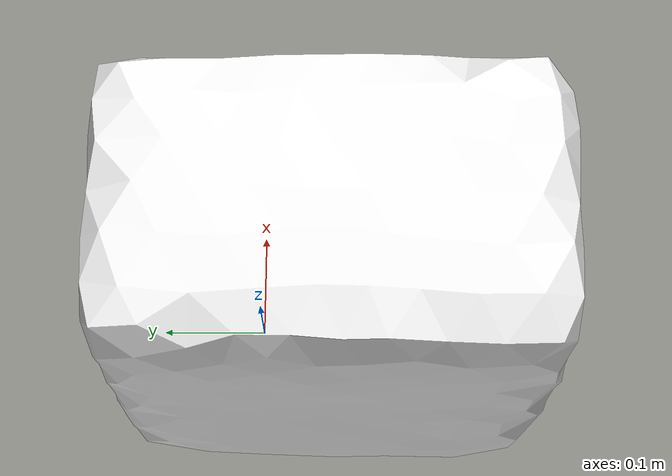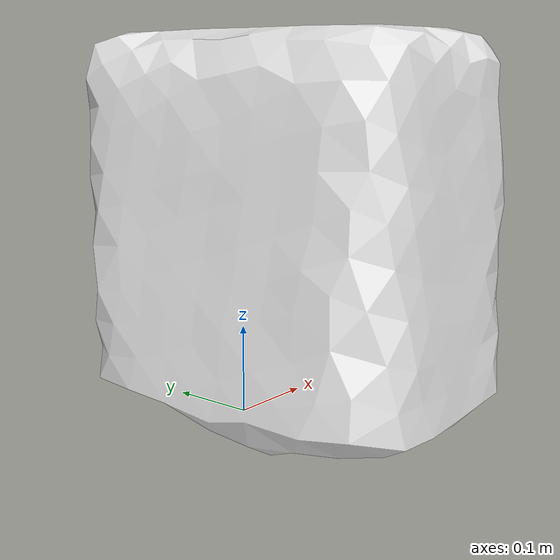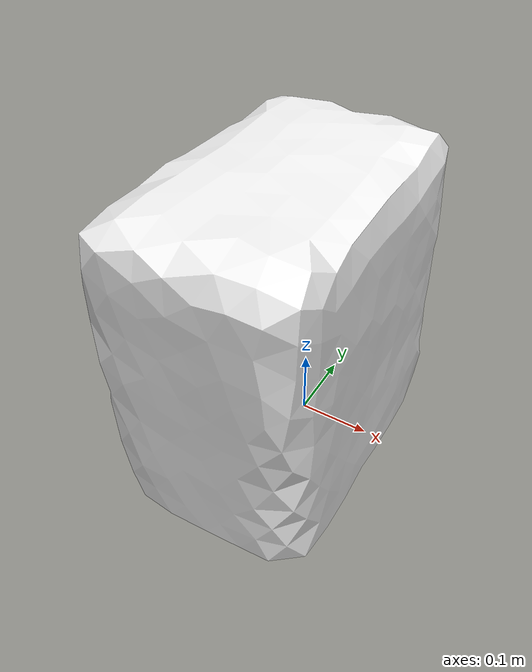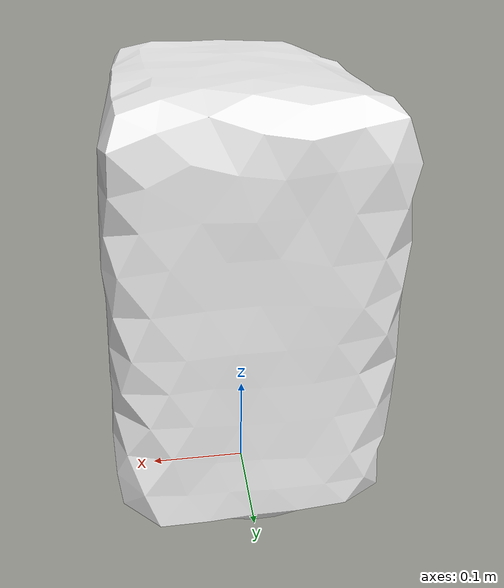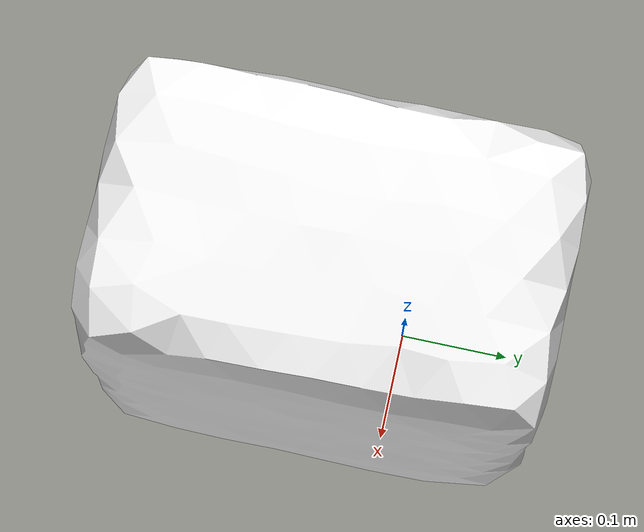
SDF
<?xml version="1.0" ?><sdf version="1.5"><model name="tchibo-box">
<link name="link">
<pose>0 0 0 0 0 0</pose>
<inertial>
<pose>0.0011 -0.069138 0.218289 0 0 0</pose>
<mass>0.59</mass>
<inertia>
<ixx>0.0171154</ixx>
<ixy>0</ixy><iyy>0.012674</iyy>
<ixz>0</ixz><iyz>0</iyz><izz>0.0116607</izz>
</inertia>
</inertial>
<visual name="visual">
<pose>0 0 0 0 0 0</pose>
<geometry><mesh><uri>model://tchibo-box/meshes/tchibo-box.dae</uri></mesh></geometry>
<material><script><uri>file://media/materials/scripts/gazebo.material</uri><name>Gazebo/WhiteGlow</name></script></material></visual>
<collision name="collision"><pose>0 0 0 0 0 0</pose><geometry><mesh><uri>model://tchibo-box/meshes/tchibo-box.dae</uri></mesh></geometry>
<surface><friction><ode><mu>1.000000</mu><mu2>1.000000</mu2></ode></friction></surface>
</collision></link></model></sdf>
